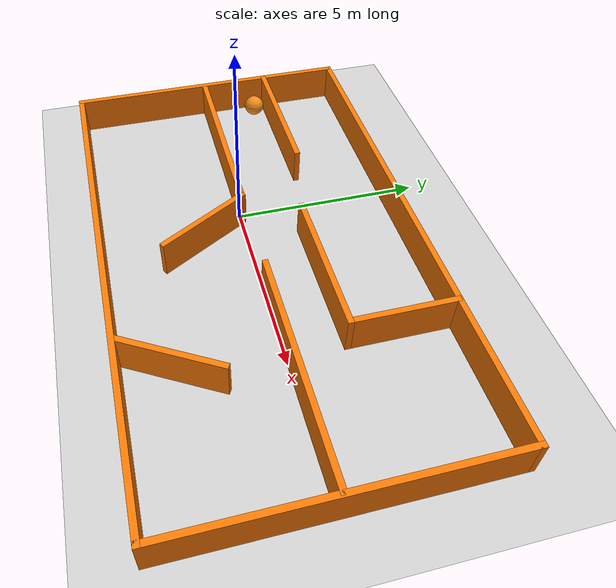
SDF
<sdf version="1.7">
 <world name="default">
  <light name="sun" type="directional">
   <pose>0 0 10 0 -0 0</pose>
   <diffuse>0.8 0.8 0.8 1</diffuse>
   <specular>0.2 0.2 0.2 1</specular>
   <attenuation>
    <range>1000</range>
    <constant>0.9</constant>
    <linear>0.01</linear>
    <quadratic>0.001</quadratic>
   </attenuation>
   <direction>-0.5 0.1 -0.9</direction>
   <spot><inner_angle>0</inner_angle><outer_angle>0</outer_angle><falloff>0</falloff></spot>
  </light>
  <model name="ground_plane">
   <static>1</static>
   <link name="link">
    <collision name="collision">
     <geometry><plane><normal>0 0 1</normal><size>100 100</size></plane></geometry>
     <surface><friction><ode><mu>100</mu><mu2>50</mu2></ode></friction></surface>
    </collision>
    <visual name="visual">
     <cast_shadows>0</cast_shadows>
     <geometry><plane><normal>0 0 1</normal><size>100 100</size></plane></geometry>
     <material>
      <script><uri>file://media/materials/scripts/gazebo.material</uri><name>Gazebo/Grey</name></script>
     </material>
    </visual>
   </link>
  </model>
  <gravity>0 0 -9.8</gravity>
  <magnetic_field>6e-06 2.3e-05 -4.2e-05</magnetic_field>
  <atmosphere type="adiabatic"/>
  <physics name="default_physics" default="0" type="ode">
   <max_step_size>0.001</max_step_size>
   <real_time_factor>1</real_time_factor>
   <real_time_update_rate>1000</real_time_update_rate>
  </physics>
  <scene><ambient>0.4 0.4 0.4 1</ambient><background>0.7 0.7 0.7 1</background><shadows>1</shadows></scene>
  <spherical_coordinates>
   <surface_model>EARTH_WGS84</surface_model>
   <latitude_deg>0</latitude_deg>
   <longitude_deg>0</longitude_deg>
   <elevation>0</elevation>
   <heading_deg>0</heading_deg>
  </spherical_coordinates>
  <model name="final_maze">
   <pose>1.767 0.166 0 0 -0 0</pose>
   <link name="Wall_0">
    <collision name="Wall_0_Collision">
     <geometry><box><size>8 0.15 1</size></box></geometry>
     <pose>0 0 0.5 0 -0 0</pose>
    </collision>
    <visual name="Wall_0_Visual">
     <pose>0 0 0.5 0 -0 0</pose>
     <geometry><box><size>8 0.15 1</size></box></geometry>
     <material>
      <script><uri>file://media/materials/scripts/gazebo.material</uri><name>Gazebo/Grey</name></script>
      <ambient>0.996078 0.47451 0.0196078 1</ambient>
     </material>
     <meta><layer>0</layer></meta>
    </visual>
    <pose>-6.8 0 0 0 -0 -1.5708</pose>
   </link>
   <link name="Wall_10">
    <collision name="Wall_10_Collision">
     <geometry><box><size>6 0.15 1</size></box></geometry>
     <pose>0 0 0.5 0 -0 0</pose>
    </collision>
    <visual name="Wall_10_Visual">
     <pose>0 0 0.5 0 -0 0</pose>
     <geometry><box><size>6 0.15 1</size></box></geometry>
     <material>
      <script><uri>file://media/materials/scripts/gazebo.material</uri><name>Gazebo/Grey</name></script>
      <ambient>0.996078 0.47451 0.0196078 1</ambient>
     </material>
     <meta><layer>0</layer></meta>
    </visual>
    <pose>3.835 -0.107 0 0 -0 0</pose>
   </link>
   <link name="Wall_12">
    <collision name="Wall_12_Collision">
     <geometry><box><size>2.75 0.15 1</size></box></geometry>
     <pose>0 0 0.5 0 -0 0</pose>
    </collision>
    <visual name="Wall_12_Visual">
     <pose>0 0 0.5 0 -0 0</pose>
     <geometry><box><size>2.75 0.15 1</size></box></geometry>
     <material>
      <script><uri>file://media/materials/scripts/gazebo.material</uri><name>Gazebo/Grey</name></script>
      <ambient>0.996078 0.47451 0.0196078 1</ambient>
     </material>
     <meta><layer>0</layer></meta>
    </visual>
    <pose>-0.92 -1.257 0 0 -0 -1.04726</pose>
   </link>
   <link name="Wall_14">
    <collision name="Wall_14_Collision">
     <geometry><box><size>2.75 0.15 1</size></box></geometry>
     <pose>0 0 0.5 0 -0 0</pose>
    </collision>
    <visual name="Wall_14_Visual">
     <pose>0 0 0.5 0 -0 0</pose>
     <geometry><box><size>2.75 0.15 1</size></box></geometry>
     <material>
      <script><uri>file://media/materials/scripts/gazebo.material</uri><name>Gazebo/Grey</name></script>
      <ambient>0.996078 0.47451 0.0196078 1</ambient>
     </material>
     <meta><layer>0</layer></meta>
    </visual>
    <pose>3.062 2.596 0 0 -0 -1.5708</pose>
   </link>
   <link name="Wall_16">
    <collision name="Wall_16_Collision">
     <geometry><box><size>4 0.15 1</size></box></geometry>
     <pose>0 0 0.5 0 -0 0</pose>
    </collision>
    <visual name="Wall_16_Visual">
     <pose>0 0 0.5 0 -0 0</pose>
     <geometry><box><size>4 0.15 1</size></box></geometry>
     <material>
      <script><uri>file://media/materials/scripts/gazebo.material</uri><name>Gazebo/Grey</name></script>
      <ambient>0.996078 0.47451 0.0196078 1</ambient>
     </material>
     <meta><layer>0</layer></meta>
    </visual>
    <pose>-4.862 1.764 0 0 -0 0</pose>
   </link>
   <link name="Wall_19">
    <collision name="Wall_19_Collision">
     <geometry><box><size>2.75 0.15 1</size></box></geometry>
     <pose>0 0 0.5 0 -0 0</pose>
    </collision>
    <visual name="Wall_19_Visual">
     <pose>0 0 0.5 0 -0 0</pose>
     <geometry><box><size>2.75 0.15 1</size></box></geometry>
     <material>
      <script><uri>file://media/materials/scripts/gazebo.material</uri><name>Gazebo/Grey</name></script>
      <ambient>0.996078 0.47451 0.0196078 1</ambient>
     </material>
     <meta><layer>0</layer></meta>
    </visual>
    <pose>2.908 -2.76468 0 0 -0 1.0472</pose>
   </link>
   <link name="Wall_23">
    <collision name="Wall_23_Collision">
     <geometry><box><size>4 0.15 1</size></box></geometry>
     <pose>0 0 0.5 0 -0 0</pose>
    </collision>
    <visual name="Wall_23_Visual">
     <pose>0 0 0.5 0 -0 0</pose>
     <geometry><box><size>4 0.15 1</size></box></geometry>
     <material>
      <script><uri>file://media/materials/scripts/gazebo.material</uri><name>Gazebo/Grey</name></script>
      <ambient>0.996078 0.47451 0.0196078 1</ambient>
     </material>
     <meta><layer>0</layer></meta>
    </visual>
    <pose>1.137 1.296 0 0 -0 3.14159</pose>
   </link>
   <link name="Wall_3">
    <collision name="Wall_3_Collision">
     <geometry><box><size>13.75 0.15 1</size></box></geometry>
     <pose>0 0 0.5 0 -0 0</pose>
    </collision>
    <visual name="Wall_3_Visual">
     <pose>0 0 0.5 0 -0 0</pose>
     <geometry><box><size>13.75 0.15 1</size></box></geometry>
     <material>
      <script><uri>file://media/materials/scripts/gazebo.material</uri><name>Gazebo/Grey</name></script>
      <ambient>0.996078 0.47451 0.0196078 1</ambient>
     </material>
     <meta><layer>0</layer></meta>
    </visual>
    <pose>-0 -3.925 0 0 -0 0</pose>
   </link>
   <link name="Wall_5">
    <collision name="Wall_5_Collision">
     <geometry><box><size>8 0.15 1</size></box></geometry>
     <pose>0 0 0.5 0 -0 0</pose>
    </collision>
    <visual name="Wall_5_Visual">
     <pose>0 0 0.5 0 -0 0</pose>
     <geometry><box><size>8 0.15 1</size></box></geometry>
     <material>
      <script><uri>file://media/materials/scripts/gazebo.material</uri><name>Gazebo/Grey</name></script>
      <ambient>0.996078 0.47451 0.0196078 1</ambient>
     </material>
     <meta><layer>0</layer></meta>
    </visual>
    <pose>6.8 0 0 0 -0 1.5708</pose>
   </link>
   <link name="Wall_6">
    <collision name="Wall_6_Collision">
     <geometry><box><size>13.75 0.15 1</size></box></geometry>
     <pose>0 0 0.5 0 -0 0</pose>
    </collision>
    <visual name="Wall_6_Visual">
     <pose>0 0 0.5 0 -0 0</pose>
     <geometry><box><size>13.75 0.15 1</size></box></geometry>
     <material>
      <script><uri>file://media/materials/scripts/gazebo.material</uri><name>Gazebo/Grey</name></script>
      <ambient>0.996078 0.47451 0.0196078 1</ambient>
     </material>
     <meta><layer>0</layer></meta>
    </visual>
    <pose>-0 3.925 0 0 -0 3.14159</pose>
   </link>
   <link name="Wall_8">
    <collision name="Wall_8_Collision">
     <geometry><box><size>5.32209 0.15 1</size></box></geometry>
     <pose>0 0 0.5 0 -0 0</pose>
    </collision>
    <visual name="Wall_8_Visual">
     <pose>0 0 0.5 0 -0 0</pose>
     <geometry><box><size>5.32209 0.15 1</size></box></geometry>
     <material>
      <script><uri>file://media/materials/scripts/gazebo.material</uri><name>Gazebo/Grey</name></script>
      <ambient>0.996078 0.47451 0.0196078 1</ambient>
     </material>
     <meta><layer>0</layer></meta>
    </visual>
    <pose>-4.156 -0.129 0 0 -0 -0.000773</pose>
   </link>
   <static>1</static>
  </model>
  <model name="unit_sphere_clone">
   <link name="link">
    <inertial>
     <mass>1</mass>
     <inertia><ixx>0.1</ixx><ixy>0</ixy><ixz>0</ixz><iyy>0.1</iyy><iyz>0</iyz><izz>0.1</izz></inertia>
    </inertial>
    <visual name="visual">
     <geometry><sphere><radius>0.291395</radius></sphere></geometry>
     <material>
      <script><name>Gazebo/Orange</name><uri>file://media/materials/scripts/gazebo.material</uri></script>
      <shader type="pixel"><normal_map>__default__</normal_map></shader>
      <ambient>1 0.509 0.047 1</ambient>
      <diffuse>1 0.509 0.047 1</diffuse>
      <specular>0.5 0.5 0.5 1</specular>
      <emissive>0 0 0 1</emissive>
     </material>
    </visual>
    <collision name="collision">
     <geometry><sphere><radius>0.291395</radius></sphere></geometry>
     <surface>
      <friction>
       <ode><mu>1</mu><mu2>1</mu2><fdir1>0 0 0</fdir1><slip1>0</slip1><slip2>0</slip2></ode>
       <torsional>
        <coefficient>1</coefficient>
        <patch_radius>0</patch_radius>
        <surface_radius>0</surface_radius>
        <use_patch_radius>1</use_patch_radius>
        <ode><slip>0</slip></ode>
       </torsional>
      </friction>
      <bounce><restitution_coefficient>0</restitution_coefficient><threshold>1e+06</threshold></bounce>
      <contact>
       <collide_without_contact>0</collide_without_contact>
       <collide_without_contact_bitmask>1</collide_without_contact_bitmask>
       <collide_bitmask>1</collide_bitmask>
       <ode>
        <soft_cfm>0</soft_cfm>
        <soft_erp>0.2</soft_erp>
        <kp>1e+13</kp>
        <kd>1</kd>
        <max_vel>0.01</max_vel>
        <min_depth>0</min_depth>
       </ode>
       <bullet>
        <split_impulse>1</split_impulse>
        <split_impulse_penetration_threshold>-0.01</split_impulse_penetration_threshold>
        <soft_cfm>0</soft_cfm>
        <soft_erp>0.2</soft_erp>
        <kp>1e+13</kp>
        <kd>1</kd>
       </bullet>
      </contact>
     </surface>
    </collision>
   </link>
   <static>0</static>
   <pose>-4.59295 1.52432 0.291395 0 -0 0</pose>
  </model>
 </world>
</sdf>
